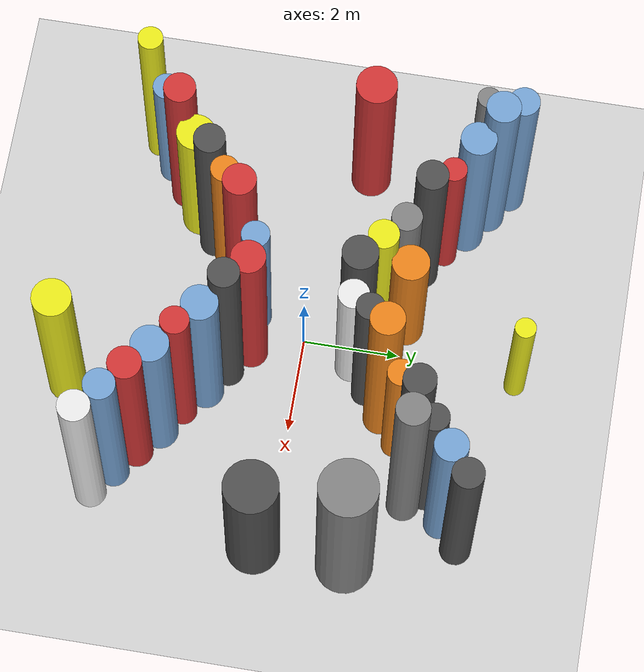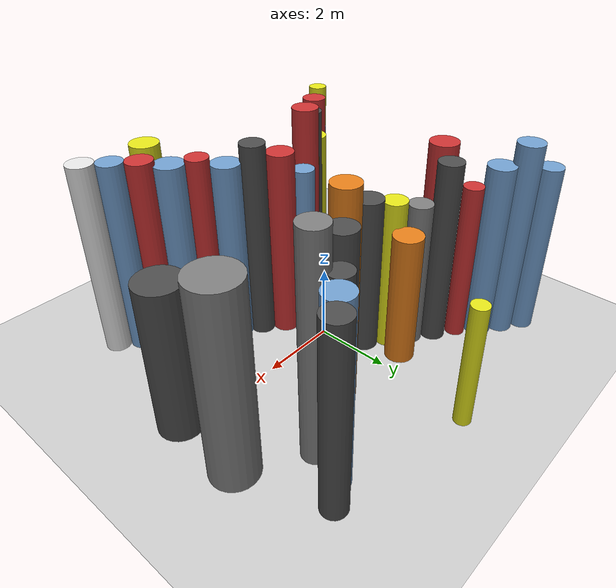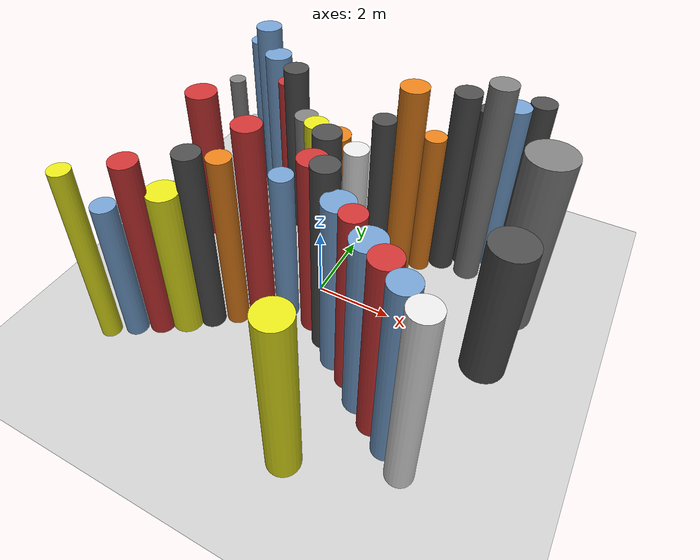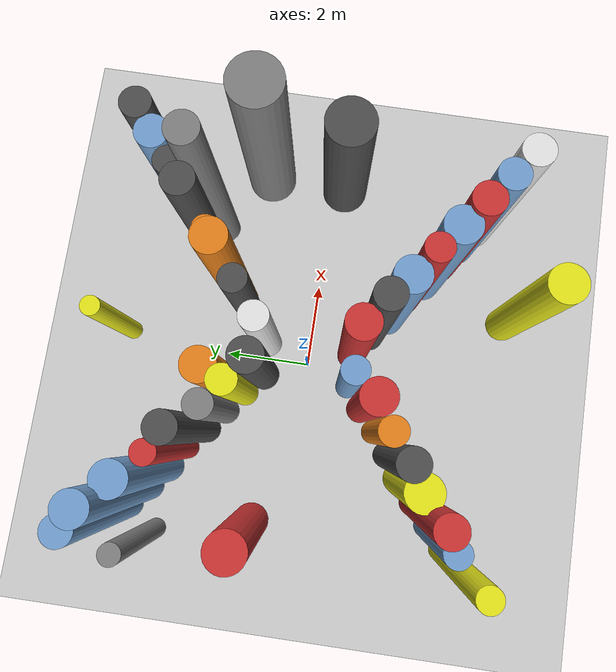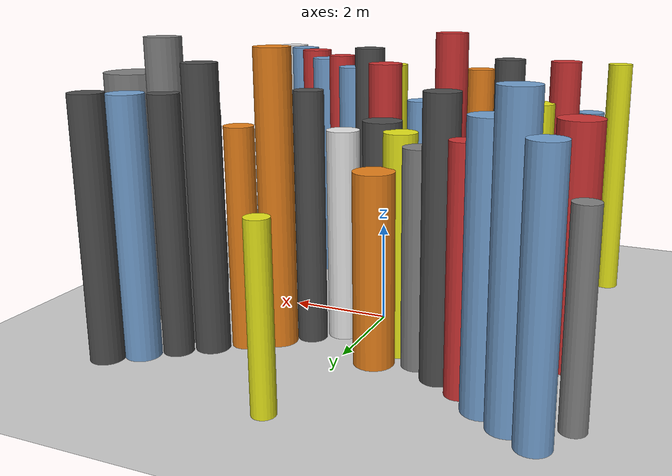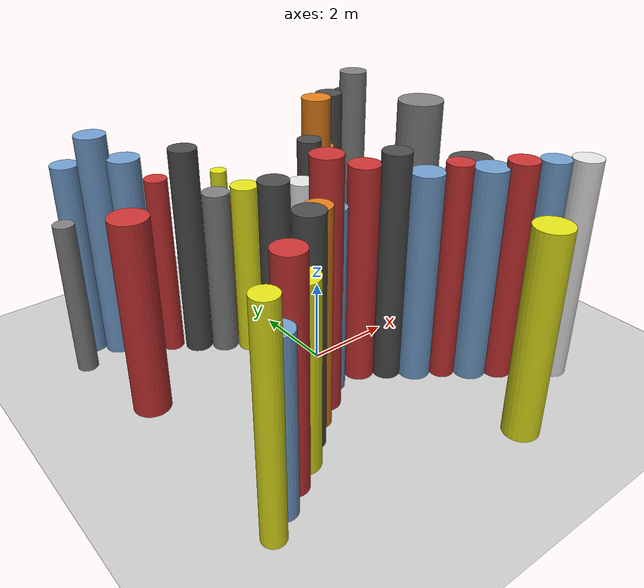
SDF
<?xml version='1.0'?>
<sdf version='1.6'>
  <world name='routeA_rl_v1__dense_recovery__rl_train__bottleneck_corridor__000016'>
    <!-- Sun light -->
    <light name='sun' type='directional'>
      <cast_shadows>1</cast_shadows>
      <pose>0 0 10 0 0 0</pose>
      <diffuse>0.8 0.8 0.8 1</diffuse>
      <specular>0.2 0.2 0.2 1</specular>
      <attenuation>
        <range>1000</range>
        <constant>0.9</constant>
        <linear>0.01</linear>
        <quadratic>0.001</quadratic>
      </attenuation>
      <direction>-0.5 0.1 -0.9</direction>
    </light>

    <!-- Ground plane -->
    <model name='ground_plane'>
      <static>1</static>
      <link name='link'>
        <collision name='collision'>
          <geometry>
            <plane>
              <normal>0 0 1</normal>
              <size>100 100</size>
            </plane>
          </geometry>
          <surface>
            <contact>
              <collide_bitmask>65535</collide_bitmask>
              <ode/>
            </contact>
            <friction>
              <ode>
                <mu>100</mu>
                <mu2>50</mu2>
              </ode>
              <torsional><ode/></torsional>
            </friction>
            <bounce/>
          </surface>
          <max_contacts>10</max_contacts>
        </collision>
        <visual name='visual'>
          <cast_shadows>0</cast_shadows>
          <geometry>
            <plane>
              <normal>0 0 1</normal>
              <size>100 100</size>
            </plane>
          </geometry>
          <material>
            <script>
              <uri>file://media/materials/scripts/gazebo.material</uri>
              <n>Gazebo/Grey</n>
            </script>
          </material>
        </visual>
      </link>
    </model>

    <!-- Environment -->
    <magnetic_field>6e-06 2.3e-05 -4.2e-05</magnetic_field>
    <atmosphere type='adiabatic'/>
    <physics name='default_physics' default='0' type='ode'>
      <gravity>0 0 -9.8</gravity>
      <max_step_size>0.004</max_step_size>
      <real_time_factor>1</real_time_factor>
      <real_time_update_rate>250</real_time_update_rate>
    </physics>
    <scene>
      <ambient>0.4 0.4 0.4 1</ambient>
      <background>0.7 0.7 0.7 1</background>
      <shadows>1</shadows>
    </scene>
    <wind/>
    <spherical_coordinates>
      <surface_model>EARTH_WGS84</surface_model>
      <latitude_deg>0</latitude_deg>
      <longitude_deg>0</longitude_deg>
      <elevation>0</elevation>
      <heading_deg>0</heading_deg>
    </spherical_coordinates>

    <!-- ============ OBSTACLES (40) ============ -->
    <model name='funnel_l_0'>
      <static>1</static>
      <link name='link'>
        <visual name='visual'>
          <geometry>
            <cylinder>
              <radius>0.2556</radius>
              <length>5.0747</length>
            </cylinder>
          </geometry>
          <material>
            <script>
              <n>Gazebo/Yellow</n>
              <uri>file://media/materials/scripts/gazebo.material</uri>
            </script>
            <ambient>0.9 0.9 0.1 1</ambient>
          </material>
        </visual>
        <collision name='collision'>
          <geometry>
            <cylinder>
              <radius>0.2556</radius>
              <length>5.0747</length>
            </cylinder>
          </geometry>
          <max_contacts>10</max_contacts>
          <surface>
            <contact><ode/></contact>
            <bounce/>
            <friction>
              <ode><mu>1</mu><mu2>1</mu2></ode>
              <torsional><ode/></torsional>
            </friction>
          </surface>
        </collision>
      </link>
      <pose>-4.0000 -3.8000 2.5373 0 0 0.0000</pose>
    </model>

    <model name='funnel_r_0'>
      <static>1</static>
      <link name='link'>
        <visual name='visual'>
          <geometry>
            <cylinder>
              <radius>0.3141</radius>
              <length>4.7385</length>
            </cylinder>
          </geometry>
          <material>
            <script>
              <n>Gazebo/Blue</n>
              <uri>file://media/materials/scripts/gazebo.material</uri>
            </script>
            <ambient>0.447 0.624 0.812 1</ambient>
          </material>
        </visual>
        <collision name='collision'>
          <geometry>
            <cylinder>
              <radius>0.3141</radius>
              <length>4.7385</length>
            </cylinder>
          </geometry>
          <max_contacts>10</max_contacts>
          <surface>
            <contact><ode/></contact>
            <bounce/>
            <friction>
              <ode><mu>1</mu><mu2>1</mu2></ode>
              <torsional><ode/></torsional>
            </friction>
          </surface>
        </collision>
      </link>
      <pose>-4.0000 3.8000 2.3692 0 0 0.0000</pose>
    </model>

    <model name='funnel_l_1'>
      <static>1</static>
      <link name='link'>
        <visual name='visual'>
          <geometry>
            <cylinder>
              <radius>0.2898</radius>
              <length>4.0480</length>
            </cylinder>
          </geometry>
          <material>
            <script>
              <n>Gazebo/Blue</n>
              <uri>file://media/materials/scripts/gazebo.material</uri>
            </script>
            <ambient>0.447 0.624 0.812 1</ambient>
          </material>
        </visual>
        <collision name='collision'>
          <geometry>
            <cylinder>
              <radius>0.2898</radius>
              <length>4.0480</length>
            </cylinder>
          </geometry>
          <max_contacts>10</max_contacts>
          <surface>
            <contact><ode/></contact>
            <bounce/>
            <friction>
              <ode><mu>1</mu><mu2>1</mu2></ode>
              <torsional><ode/></torsional>
            </friction>
          </surface>
        </collision>
      </link>
      <pose>-3.4857 -3.4071 2.0240 0 0 0.0000</pose>
    </model>

    <model name='funnel_r_1'>
      <static>1</static>
      <link name='link'>
        <visual name='visual'>
          <geometry>
            <cylinder>
              <radius>0.3482</radius>
              <length>5.4167</length>
            </cylinder>
          </geometry>
          <material>
            <script>
              <n>Gazebo/Blue</n>
              <uri>file://media/materials/scripts/gazebo.material</uri>
            </script>
            <ambient>0.447 0.624 0.812 1</ambient>
          </material>
        </visual>
        <collision name='collision'>
          <geometry>
            <cylinder>
              <radius>0.3482</radius>
              <length>5.4167</length>
            </cylinder>
          </geometry>
          <max_contacts>10</max_contacts>
          <surface>
            <contact><ode/></contact>
            <bounce/>
            <friction>
              <ode><mu>1</mu><mu2>1</mu2></ode>
              <torsional><ode/></torsional>
            </friction>
          </surface>
        </collision>
      </link>
      <pose>-3.4857 3.4071 2.7084 0 0 0.0000</pose>
    </model>

    <model name='funnel_l_2'>
      <static>1</static>
      <link name='link'>
        <visual name='visual'>
          <geometry>
            <cylinder>
              <radius>0.3272</radius>
              <length>5.1636</length>
            </cylinder>
          </geometry>
          <material>
            <script>
              <n>Gazebo/Red</n>
              <uri>file://media/materials/scripts/gazebo.material</uri>
            </script>
            <ambient>0.8 0.2 0.2 1</ambient>
          </material>
        </visual>
        <collision name='collision'>
          <geometry>
            <cylinder>
              <radius>0.3272</radius>
              <length>5.1636</length>
            </cylinder>
          </geometry>
          <max_contacts>10</max_contacts>
          <surface>
            <contact><ode/></contact>
            <bounce/>
            <friction>
              <ode><mu>1</mu><mu2>1</mu2></ode>
              <torsional><ode/></torsional>
            </friction>
          </surface>
        </collision>
      </link>
      <pose>-2.9714 -3.0143 2.5818 0 0 0.0000</pose>
    </model>

    <model name='funnel_r_2'>
      <static>1</static>
      <link name='link'>
        <visual name='visual'>
          <geometry>
            <cylinder>
              <radius>0.3634</radius>
              <length>4.8879</length>
            </cylinder>
          </geometry>
          <material>
            <script>
              <n>Gazebo/Blue</n>
              <uri>file://media/materials/scripts/gazebo.material</uri>
            </script>
            <ambient>0.447 0.624 0.812 1</ambient>
          </material>
        </visual>
        <collision name='collision'>
          <geometry>
            <cylinder>
              <radius>0.3634</radius>
              <length>4.8879</length>
            </cylinder>
          </geometry>
          <max_contacts>10</max_contacts>
          <surface>
            <contact><ode/></contact>
            <bounce/>
            <friction>
              <ode><mu>1</mu><mu2>1</mu2></ode>
              <torsional><ode/></torsional>
            </friction>
          </surface>
        </collision>
      </link>
      <pose>-2.9714 3.0143 2.4440 0 0 0.0000</pose>
    </model>

    <model name='funnel_l_3'>
      <static>1</static>
      <link name='link'>
        <visual name='visual'>
          <geometry>
            <cylinder>
              <radius>0.3950</radius>
              <length>4.2938</length>
            </cylinder>
          </geometry>
          <material>
            <script>
              <n>Gazebo/Yellow</n>
              <uri>file://media/materials/scripts/gazebo.material</uri>
            </script>
            <ambient>0.9 0.9 0.1 1</ambient>
          </material>
        </visual>
        <collision name='collision'>
          <geometry>
            <cylinder>
              <radius>0.3950</radius>
              <length>4.2938</length>
            </cylinder>
          </geometry>
          <max_contacts>10</max_contacts>
          <surface>
            <contact><ode/></contact>
            <bounce/>
            <friction>
              <ode><mu>1</mu><mu2>1</mu2></ode>
              <torsional><ode/></torsional>
            </friction>
          </surface>
        </collision>
      </link>
      <pose>-2.4571 -2.6214 2.1469 0 0 0.0000</pose>
    </model>

    <model name='funnel_r_3'>
      <static>1</static>
      <link name='link'>
        <visual name='visual'>
          <geometry>
            <cylinder>
              <radius>0.2606</radius>
              <length>4.3998</length>
            </cylinder>
          </geometry>
          <material>
            <script>
              <n>Gazebo/Red</n>
              <uri>file://media/materials/scripts/gazebo.material</uri>
            </script>
            <ambient>0.8 0.2 0.2 1</ambient>
          </material>
        </visual>
        <collision name='collision'>
          <geometry>
            <cylinder>
              <radius>0.2606</radius>
              <length>4.3998</length>
            </cylinder>
          </geometry>
          <max_contacts>10</max_contacts>
          <surface>
            <contact><ode/></contact>
            <bounce/>
            <friction>
              <ode><mu>1</mu><mu2>1</mu2></ode>
              <torsional><ode/></torsional>
            </friction>
          </surface>
        </collision>
      </link>
      <pose>-2.4571 2.6214 2.1999 0 0 0.0000</pose>
    </model>

    <model name='funnel_l_4'>
      <static>1</static>
      <link name='link'>
        <visual name='visual'>
          <geometry>
            <cylinder>
              <radius>0.3209</radius>
              <length>5.2410</length>
            </cylinder>
          </geometry>
          <material>
            <script>
              <n>Gazebo/DarkGrey</n>
              <uri>file://media/materials/scripts/gazebo.material</uri>
            </script>
            <ambient>0.3 0.3 0.3 1</ambient>
          </material>
        </visual>
        <collision name='collision'>
          <geometry>
            <cylinder>
              <radius>0.3209</radius>
              <length>5.2410</length>
            </cylinder>
          </geometry>
          <max_contacts>10</max_contacts>
          <surface>
            <contact><ode/></contact>
            <bounce/>
            <friction>
              <ode><mu>1</mu><mu2>1</mu2></ode>
              <torsional><ode/></torsional>
            </friction>
          </surface>
        </collision>
      </link>
      <pose>-1.9429 -2.2286 2.6205 0 0 0.0000</pose>
    </model>

    <model name='funnel_r_4'>
      <static>1</static>
      <link name='link'>
        <visual name='visual'>
          <geometry>
            <cylinder>
              <radius>0.3242</radius>
              <length>5.0998</length>
            </cylinder>
          </geometry>
          <material>
            <script>
              <n>Gazebo/DarkGrey</n>
              <uri>file://media/materials/scripts/gazebo.material</uri>
            </script>
            <ambient>0.3 0.3 0.3 1</ambient>
          </material>
        </visual>
        <collision name='collision'>
          <geometry>
            <cylinder>
              <radius>0.3242</radius>
              <length>5.0998</length>
            </cylinder>
          </geometry>
          <max_contacts>10</max_contacts>
          <surface>
            <contact><ode/></contact>
            <bounce/>
            <friction>
              <ode><mu>1</mu><mu2>1</mu2></ode>
              <torsional><ode/></torsional>
            </friction>
          </surface>
        </collision>
      </link>
      <pose>-1.9429 2.2286 2.5499 0 0 0.0000</pose>
    </model>

    <model name='funnel_l_5'>
      <static>1</static>
      <link name='link'>
        <visual name='visual'>
          <geometry>
            <cylinder>
              <radius>0.2881</radius>
              <length>5.0540</length>
            </cylinder>
          </geometry>
          <material>
            <script>
              <n>Gazebo/Orange</n>
              <uri>file://media/materials/scripts/gazebo.material</uri>
            </script>
            <ambient>0.9 0.5 0.1 1</ambient>
          </material>
        </visual>
        <collision name='collision'>
          <geometry>
            <cylinder>
              <radius>0.2881</radius>
              <length>5.0540</length>
            </cylinder>
          </geometry>
          <max_contacts>10</max_contacts>
          <surface>
            <contact><ode/></contact>
            <bounce/>
            <friction>
              <ode><mu>1</mu><mu2>1</mu2></ode>
              <torsional><ode/></torsional>
            </friction>
          </surface>
        </collision>
      </link>
      <pose>-1.4286 -1.8357 2.5270 0 0 0.0000</pose>
    </model>

    <model name='funnel_r_5'>
      <static>1</static>
      <link name='link'>
        <visual name='visual'>
          <geometry>
            <cylinder>
              <radius>0.3137</radius>
              <length>4.0667</length>
            </cylinder>
          </geometry>
          <material>
            <script>
              <n>Gazebo/Grey</n>
              <uri>file://media/materials/scripts/gazebo.material</uri>
            </script>
            <ambient>0.5 0.5 0.5 1</ambient>
          </material>
        </visual>
        <collision name='collision'>
          <geometry>
            <cylinder>
              <radius>0.3137</radius>
              <length>4.0667</length>
            </cylinder>
          </geometry>
          <max_contacts>10</max_contacts>
          <surface>
            <contact><ode/></contact>
            <bounce/>
            <friction>
              <ode><mu>1</mu><mu2>1</mu2></ode>
              <torsional><ode/></torsional>
            </friction>
          </surface>
        </collision>
      </link>
      <pose>-1.4286 1.8357 2.0334 0 0 0.0000</pose>
    </model>

    <model name='funnel_l_6'>
      <static>1</static>
      <link name='link'>
        <visual name='visual'>
          <geometry>
            <cylinder>
              <radius>0.3389</radius>
              <length>5.8057</length>
            </cylinder>
          </geometry>
          <material>
            <script>
              <n>Gazebo/Red</n>
              <uri>file://media/materials/scripts/gazebo.material</uri>
            </script>
            <ambient>0.8 0.2 0.2 1</ambient>
          </material>
        </visual>
        <collision name='collision'>
          <geometry>
            <cylinder>
              <radius>0.3389</radius>
              <length>5.8057</length>
            </cylinder>
          </geometry>
          <max_contacts>10</max_contacts>
          <surface>
            <contact><ode/></contact>
            <bounce/>
            <friction>
              <ode><mu>1</mu><mu2>1</mu2></ode>
              <torsional><ode/></torsional>
            </friction>
          </surface>
        </collision>
      </link>
      <pose>-0.9143 -1.4429 2.9028 0 0 0.0000</pose>
    </model>

    <model name='funnel_r_6'>
      <static>1</static>
      <link name='link'>
        <visual name='visual'>
          <geometry>
            <cylinder>
              <radius>0.3179</radius>
              <length>4.2262</length>
            </cylinder>
          </geometry>
          <material>
            <script>
              <n>Gazebo/Yellow</n>
              <uri>file://media/materials/scripts/gazebo.material</uri>
            </script>
            <ambient>0.9 0.9 0.1 1</ambient>
          </material>
        </visual>
        <collision name='collision'>
          <geometry>
            <cylinder>
              <radius>0.3179</radius>
              <length>4.2262</length>
            </cylinder>
          </geometry>
          <max_contacts>10</max_contacts>
          <surface>
            <contact><ode/></contact>
            <bounce/>
            <friction>
              <ode><mu>1</mu><mu2>1</mu2></ode>
              <torsional><ode/></torsional>
            </friction>
          </surface>
        </collision>
      </link>
      <pose>-0.9143 1.4429 2.1131 0 0 0.0000</pose>
    </model>

    <model name='funnel_l_7'>
      <static>1</static>
      <link name='link'>
        <visual name='visual'>
          <geometry>
            <cylinder>
              <radius>0.2910</radius>
              <length>4.4457</length>
            </cylinder>
          </geometry>
          <material>
            <script>
              <n>Gazebo/Blue</n>
              <uri>file://media/materials/scripts/gazebo.material</uri>
            </script>
            <ambient>0.447 0.624 0.812 1</ambient>
          </material>
        </visual>
        <collision name='collision'>
          <geometry>
            <cylinder>
              <radius>0.2910</radius>
              <length>4.4457</length>
            </cylinder>
          </geometry>
          <max_contacts>10</max_contacts>
          <surface>
            <contact><ode/></contact>
            <bounce/>
            <friction>
              <ode><mu>1</mu><mu2>1</mu2></ode>
              <torsional><ode/></torsional>
            </friction>
          </surface>
        </collision>
      </link>
      <pose>-0.4000 -1.0500 2.2229 0 0 0.0000</pose>
    </model>

    <model name='funnel_r_7'>
      <static>1</static>
      <link name='link'>
        <visual name='visual'>
          <geometry>
            <cylinder>
              <radius>0.3722</radius>
              <length>4.3404</length>
            </cylinder>
          </geometry>
          <material>
            <script>
              <n>Gazebo/DarkGrey</n>
              <uri>file://media/materials/scripts/gazebo.material</uri>
            </script>
            <ambient>0.3 0.3 0.3 1</ambient>
          </material>
        </visual>
        <collision name='collision'>
          <geometry>
            <cylinder>
              <radius>0.3722</radius>
              <length>4.3404</length>
            </cylinder>
          </geometry>
          <max_contacts>10</max_contacts>
          <surface>
            <contact><ode/></contact>
            <bounce/>
            <friction>
              <ode><mu>1</mu><mu2>1</mu2></ode>
              <torsional><ode/></torsional>
            </friction>
          </surface>
        </collision>
      </link>
      <pose>-0.4000 1.0500 2.1702 0 0 0.0000</pose>
    </model>

    <model name='funnel_out_l_0'>
      <static>1</static>
      <link name='link'>
        <visual name='visual'>
          <geometry>
            <cylinder>
              <radius>0.3514</radius>
              <length>5.1722</length>
            </cylinder>
          </geometry>
          <material>
            <script>
              <n>Gazebo/Red</n>
              <uri>file://media/materials/scripts/gazebo.material</uri>
            </script>
            <ambient>0.8 0.2 0.2 1</ambient>
          </material>
        </visual>
        <collision name='collision'>
          <geometry>
            <cylinder>
              <radius>0.3514</radius>
              <length>5.1722</length>
            </cylinder>
          </geometry>
          <max_contacts>10</max_contacts>
          <surface>
            <contact><ode/></contact>
            <bounce/>
            <friction>
              <ode><mu>1</mu><mu2>1</mu2></ode>
              <torsional><ode/></torsional>
            </friction>
          </surface>
        </collision>
      </link>
      <pose>0.4000 -1.0500 2.5861 0 0 0.0000</pose>
    </model>

    <model name='funnel_out_r_0'>
      <static>1</static>
      <link name='link'>
        <visual name='visual'>
          <geometry>
            <cylinder>
              <radius>0.3197</radius>
              <length>4.1142</length>
            </cylinder>
          </geometry>
          <material>
            <script>
              <n>Gazebo/White</n>
              <uri>file://media/materials/scripts/gazebo.material</uri>
            </script>
            <ambient>0.9 0.9 0.9 1</ambient>
          </material>
        </visual>
        <collision name='collision'>
          <geometry>
            <cylinder>
              <radius>0.3197</radius>
              <length>4.1142</length>
            </cylinder>
          </geometry>
          <max_contacts>10</max_contacts>
          <surface>
            <contact><ode/></contact>
            <bounce/>
            <friction>
              <ode><mu>1</mu><mu2>1</mu2></ode>
              <torsional><ode/></torsional>
            </friction>
          </surface>
        </collision>
      </link>
      <pose>0.4000 1.0500 2.0571 0 0 0.0000</pose>
    </model>

    <model name='funnel_out_l_1'>
      <static>1</static>
      <link name='link'>
        <visual name='visual'>
          <geometry>
            <cylinder>
              <radius>0.3209</radius>
              <length>5.4429</length>
            </cylinder>
          </geometry>
          <material>
            <script>
              <n>Gazebo/DarkGrey</n>
              <uri>file://media/materials/scripts/gazebo.material</uri>
            </script>
            <ambient>0.3 0.3 0.3 1</ambient>
          </material>
        </visual>
        <collision name='collision'>
          <geometry>
            <cylinder>
              <radius>0.3209</radius>
              <length>5.4429</length>
            </cylinder>
          </geometry>
          <max_contacts>10</max_contacts>
          <surface>
            <contact><ode/></contact>
            <bounce/>
            <friction>
              <ode><mu>1</mu><mu2>1</mu2></ode>
              <torsional><ode/></torsional>
            </friction>
          </surface>
        </collision>
      </link>
      <pose>0.9143 -1.4429 2.7215 0 0 0.0000</pose>
    </model>

    <model name='funnel_out_r_1'>
      <static>1</static>
      <link name='link'>
        <visual name='visual'>
          <geometry>
            <cylinder>
              <radius>0.2873</radius>
              <length>4.8858</length>
            </cylinder>
          </geometry>
          <material>
            <script>
              <n>Gazebo/DarkGrey</n>
              <uri>file://media/materials/scripts/gazebo.material</uri>
            </script>
            <ambient>0.3 0.3 0.3 1</ambient>
          </material>
        </visual>
        <collision name='collision'>
          <geometry>
            <cylinder>
              <radius>0.2873</radius>
              <length>4.8858</length>
            </cylinder>
          </geometry>
          <max_contacts>10</max_contacts>
          <surface>
            <contact><ode/></contact>
            <bounce/>
            <friction>
              <ode><mu>1</mu><mu2>1</mu2></ode>
              <torsional><ode/></torsional>
            </friction>
          </surface>
        </collision>
      </link>
      <pose>0.9143 1.4429 2.4429 0 0 0.0000</pose>
    </model>

    <model name='funnel_out_l_2'>
      <static>1</static>
      <link name='link'>
        <visual name='visual'>
          <geometry>
            <cylinder>
              <radius>0.3749</radius>
              <length>4.9918</length>
            </cylinder>
          </geometry>
          <material>
            <script>
              <n>Gazebo/Blue</n>
              <uri>file://media/materials/scripts/gazebo.material</uri>
            </script>
            <ambient>0.447 0.624 0.812 1</ambient>
          </material>
        </visual>
        <collision name='collision'>
          <geometry>
            <cylinder>
              <radius>0.3749</radius>
              <length>4.9918</length>
            </cylinder>
          </geometry>
          <max_contacts>10</max_contacts>
          <surface>
            <contact><ode/></contact>
            <bounce/>
            <friction>
              <ode><mu>1</mu><mu2>1</mu2></ode>
              <torsional><ode/></torsional>
            </friction>
          </surface>
        </collision>
      </link>
      <pose>1.4286 -1.8357 2.4959 0 0 0.0000</pose>
    </model>

    <model name='funnel_out_r_2'>
      <static>1</static>
      <link name='link'>
        <visual name='visual'>
          <geometry>
            <cylinder>
              <radius>0.3491</radius>
              <length>5.6908</length>
            </cylinder>
          </geometry>
          <material>
            <script>
              <n>Gazebo/Orange</n>
              <uri>file://media/materials/scripts/gazebo.material</uri>
            </script>
            <ambient>0.9 0.5 0.1 1</ambient>
          </material>
        </visual>
        <collision name='collision'>
          <geometry>
            <cylinder>
              <radius>0.3491</radius>
              <length>5.6908</length>
            </cylinder>
          </geometry>
          <max_contacts>10</max_contacts>
          <surface>
            <contact><ode/></contact>
            <bounce/>
            <friction>
              <ode><mu>1</mu><mu2>1</mu2></ode>
              <torsional><ode/></torsional>
            </friction>
          </surface>
        </collision>
      </link>
      <pose>1.4286 1.8357 2.8454 0 0 0.0000</pose>
    </model>

    <model name='funnel_out_l_3'>
      <static>1</static>
      <link name='link'>
        <visual name='visual'>
          <geometry>
            <cylinder>
              <radius>0.2941</radius>
              <length>5.1925</length>
            </cylinder>
          </geometry>
          <material>
            <script>
              <n>Gazebo/Red</n>
              <uri>file://media/materials/scripts/gazebo.material</uri>
            </script>
            <ambient>0.8 0.2 0.2 1</ambient>
          </material>
        </visual>
        <collision name='collision'>
          <geometry>
            <cylinder>
              <radius>0.2941</radius>
              <length>5.1925</length>
            </cylinder>
          </geometry>
          <max_contacts>10</max_contacts>
          <surface>
            <contact><ode/></contact>
            <bounce/>
            <friction>
              <ode><mu>1</mu><mu2>1</mu2></ode>
              <torsional><ode/></torsional>
            </friction>
          </surface>
        </collision>
      </link>
      <pose>1.9429 -2.2286 2.5963 0 0 0.0000</pose>
    </model>

    <model name='funnel_out_r_3'>
      <static>1</static>
      <link name='link'>
        <visual name='visual'>
          <geometry>
            <cylinder>
              <radius>0.2830</radius>
              <length>4.2779</length>
            </cylinder>
          </geometry>
          <material>
            <script>
              <n>Gazebo/Orange</n>
              <uri>file://media/materials/scripts/gazebo.material</uri>
            </script>
            <ambient>0.9 0.5 0.1 1</ambient>
          </material>
        </visual>
        <collision name='collision'>
          <geometry>
            <cylinder>
              <radius>0.2830</radius>
              <length>4.2779</length>
            </cylinder>
          </geometry>
          <max_contacts>10</max_contacts>
          <surface>
            <contact><ode/></contact>
            <bounce/>
            <friction>
              <ode><mu>1</mu><mu2>1</mu2></ode>
              <torsional><ode/></torsional>
            </friction>
          </surface>
        </collision>
      </link>
      <pose>1.9429 2.2286 2.1390 0 0 0.0000</pose>
    </model>

    <model name='funnel_out_l_4'>
      <static>1</static>
      <link name='link'>
        <visual name='visual'>
          <geometry>
            <cylinder>
              <radius>0.3834</radius>
              <length>5.0883</length>
            </cylinder>
          </geometry>
          <material>
            <script>
              <n>Gazebo/Blue</n>
              <uri>file://media/materials/scripts/gazebo.material</uri>
            </script>
            <ambient>0.447 0.624 0.812 1</ambient>
          </material>
        </visual>
        <collision name='collision'>
          <geometry>
            <cylinder>
              <radius>0.3834</radius>
              <length>5.0883</length>
            </cylinder>
          </geometry>
          <max_contacts>10</max_contacts>
          <surface>
            <contact><ode/></contact>
            <bounce/>
            <friction>
              <ode><mu>1</mu><mu2>1</mu2></ode>
              <torsional><ode/></torsional>
            </friction>
          </surface>
        </collision>
      </link>
      <pose>2.4571 -2.6214 2.5441 0 0 0.0000</pose>
    </model>

    <model name='funnel_out_r_4'>
      <static>1</static>
      <link name='link'>
        <visual name='visual'>
          <geometry>
            <cylinder>
              <radius>0.3327</radius>
              <length>5.4341</length>
            </cylinder>
          </geometry>
          <material>
            <script>
              <n>Gazebo/DarkGrey</n>
              <uri>file://media/materials/scripts/gazebo.material</uri>
            </script>
            <ambient>0.3 0.3 0.3 1</ambient>
          </material>
        </visual>
        <collision name='collision'>
          <geometry>
            <cylinder>
              <radius>0.3327</radius>
              <length>5.4341</length>
            </cylinder>
          </geometry>
          <max_contacts>10</max_contacts>
          <surface>
            <contact><ode/></contact>
            <bounce/>
            <friction>
              <ode><mu>1</mu><mu2>1</mu2></ode>
              <torsional><ode/></torsional>
            </friction>
          </surface>
        </collision>
      </link>
      <pose>2.4571 2.6214 2.7170 0 0 0.0000</pose>
    </model>

    <model name='funnel_out_l_5'>
      <static>1</static>
      <link name='link'>
        <visual name='visual'>
          <geometry>
            <cylinder>
              <radius>0.3405</radius>
              <length>5.2278</length>
            </cylinder>
          </geometry>
          <material>
            <script>
              <n>Gazebo/Red</n>
              <uri>file://media/materials/scripts/gazebo.material</uri>
            </script>
            <ambient>0.8 0.2 0.2 1</ambient>
          </material>
        </visual>
        <collision name='collision'>
          <geometry>
            <cylinder>
              <radius>0.3405</radius>
              <length>5.2278</length>
            </cylinder>
          </geometry>
          <max_contacts>10</max_contacts>
          <surface>
            <contact><ode/></contact>
            <bounce/>
            <friction>
              <ode><mu>1</mu><mu2>1</mu2></ode>
              <torsional><ode/></torsional>
            </friction>
          </surface>
        </collision>
      </link>
      <pose>2.9714 -3.0143 2.6139 0 0 0.0000</pose>
    </model>

    <model name='funnel_out_r_5'>
      <static>1</static>
      <link name='link'>
        <visual name='visual'>
          <geometry>
            <cylinder>
              <radius>0.2903</radius>
              <length>4.9147</length>
            </cylinder>
          </geometry>
          <material>
            <script>
              <n>Gazebo/DarkGrey</n>
              <uri>file://media/materials/scripts/gazebo.material</uri>
            </script>
            <ambient>0.3 0.3 0.3 1</ambient>
          </material>
        </visual>
        <collision name='collision'>
          <geometry>
            <cylinder>
              <radius>0.2903</radius>
              <length>4.9147</length>
            </cylinder>
          </geometry>
          <max_contacts>10</max_contacts>
          <surface>
            <contact><ode/></contact>
            <bounce/>
            <friction>
              <ode><mu>1</mu><mu2>1</mu2></ode>
              <torsional><ode/></torsional>
            </friction>
          </surface>
        </collision>
      </link>
      <pose>2.9714 3.0143 2.4574 0 0 0.0000</pose>
    </model>

    <model name='funnel_out_l_6'>
      <static>1</static>
      <link name='link'>
        <visual name='visual'>
          <geometry>
            <cylinder>
              <radius>0.3245</radius>
              <length>5.2447</length>
            </cylinder>
          </geometry>
          <material>
            <script>
              <n>Gazebo/Blue</n>
              <uri>file://media/materials/scripts/gazebo.material</uri>
            </script>
            <ambient>0.447 0.624 0.812 1</ambient>
          </material>
        </visual>
        <collision name='collision'>
          <geometry>
            <cylinder>
              <radius>0.3245</radius>
              <length>5.2447</length>
            </cylinder>
          </geometry>
          <max_contacts>10</max_contacts>
          <surface>
            <contact><ode/></contact>
            <bounce/>
            <friction>
              <ode><mu>1</mu><mu2>1</mu2></ode>
              <torsional><ode/></torsional>
            </friction>
          </surface>
        </collision>
      </link>
      <pose>3.4857 -3.4071 2.6224 0 0 0.0000</pose>
    </model>

    <model name='funnel_out_r_6'>
      <static>1</static>
      <link name='link'>
        <visual name='visual'>
          <geometry>
            <cylinder>
              <radius>0.3430</radius>
              <length>4.9350</length>
            </cylinder>
          </geometry>
          <material>
            <script>
              <n>Gazebo/Blue</n>
              <uri>file://media/materials/scripts/gazebo.material</uri>
            </script>
            <ambient>0.447 0.624 0.812 1</ambient>
          </material>
        </visual>
        <collision name='collision'>
          <geometry>
            <cylinder>
              <radius>0.3430</radius>
              <length>4.9350</length>
            </cylinder>
          </geometry>
          <max_contacts>10</max_contacts>
          <surface>
            <contact><ode/></contact>
            <bounce/>
            <friction>
              <ode><mu>1</mu><mu2>1</mu2></ode>
              <torsional><ode/></torsional>
            </friction>
          </surface>
        </collision>
      </link>
      <pose>3.4857 3.4071 2.4675 0 0 0.0000</pose>
    </model>

    <model name='funnel_out_l_7'>
      <static>1</static>
      <link name='link'>
        <visual name='visual'>
          <geometry>
            <cylinder>
              <radius>0.3297</radius>
              <length>5.2639</length>
            </cylinder>
          </geometry>
          <material>
            <script>
              <n>Gazebo/White</n>
              <uri>file://media/materials/scripts/gazebo.material</uri>
            </script>
            <ambient>0.9 0.9 0.9 1</ambient>
          </material>
        </visual>
        <collision name='collision'>
          <geometry>
            <cylinder>
              <radius>0.3297</radius>
              <length>5.2639</length>
            </cylinder>
          </geometry>
          <max_contacts>10</max_contacts>
          <surface>
            <contact><ode/></contact>
            <bounce/>
            <friction>
              <ode><mu>1</mu><mu2>1</mu2></ode>
              <torsional><ode/></torsional>
            </friction>
          </surface>
        </collision>
      </link>
      <pose>4.0000 -3.8000 2.6319 0 0 0.0000</pose>
    </model>

    <model name='funnel_out_r_7'>
      <static>1</static>
      <link name='link'>
        <visual name='visual'>
          <geometry>
            <cylinder>
              <radius>0.3220</radius>
              <length>4.9665</length>
            </cylinder>
          </geometry>
          <material>
            <script>
              <n>Gazebo/DarkGrey</n>
              <uri>file://media/materials/scripts/gazebo.material</uri>
            </script>
            <ambient>0.3 0.3 0.3 1</ambient>
          </material>
        </visual>
        <collision name='collision'>
          <geometry>
            <cylinder>
              <radius>0.3220</radius>
              <length>4.9665</length>
            </cylinder>
          </geometry>
          <max_contacts>10</max_contacts>
          <surface>
            <contact><ode/></contact>
            <bounce/>
            <friction>
              <ode><mu>1</mu><mu2>1</mu2></ode>
              <torsional><ode/></torsional>
            </friction>
          </surface>
        </collision>
      </link>
      <pose>4.0000 3.8000 2.4833 0 0 0.0000</pose>
    </model>

    <model name='bn_scatter_0'>
      <static>1</static>
      <link name='link'>
        <visual name='visual'>
          <geometry>
            <cylinder>
              <radius>0.5587</radius>
              <length>4.0371</length>
            </cylinder>
          </geometry>
          <material>
            <script>
              <n>Gazebo/DarkGrey</n>
              <uri>file://media/materials/scripts/gazebo.material</uri>
            </script>
            <ambient>0.3 0.3 0.3 1</ambient>
          </material>
        </visual>
        <collision name='collision'>
          <geometry>
            <cylinder>
              <radius>0.5587</radius>
              <length>4.0371</length>
            </cylinder>
          </geometry>
          <max_contacts>10</max_contacts>
          <surface>
            <contact><ode/></contact>
            <bounce/>
            <friction>
              <ode><mu>1</mu><mu2>1</mu2></ode>
              <torsional><ode/></torsional>
            </friction>
          </surface>
        </collision>
      </link>
      <pose>4.6478 -0.2856 2.0186 0 0 0.0000</pose>
    </model>

    <model name='bn_scatter_1'>
      <static>1</static>
      <link name='link'>
        <visual name='visual'>
          <geometry>
            <cylinder>
              <radius>0.2182</radius>
              <length>3.3375</length>
            </cylinder>
          </geometry>
          <material>
            <script>
              <n>Gazebo/Yellow</n>
              <uri>file://media/materials/scripts/gazebo.material</uri>
            </script>
            <ambient>0.9 0.9 0.1 1</ambient>
          </material>
        </visual>
        <collision name='collision'>
          <geometry>
            <cylinder>
              <radius>0.2182</radius>
              <length>3.3375</length>
            </cylinder>
          </geometry>
          <max_contacts>10</max_contacts>
          <surface>
            <contact><ode/></contact>
            <bounce/>
            <friction>
              <ode><mu>1</mu><mu2>1</mu2></ode>
              <torsional><ode/></torsional>
            </friction>
          </surface>
        </collision>
      </link>
      <pose>0.2491 4.5031 1.6687 0 0 0.0000</pose>
    </model>

    <model name='bn_scatter_2'>
      <static>1</static>
      <link name='link'>
        <visual name='visual'>
          <geometry>
            <cylinder>
              <radius>0.4015</radius>
              <length>4.7819</length>
            </cylinder>
          </geometry>
          <material>
            <script>
              <n>Gazebo/Yellow</n>
              <uri>file://media/materials/scripts/gazebo.material</uri>
            </script>
            <ambient>0.9 0.9 0.1 1</ambient>
          </material>
        </visual>
        <collision name='collision'>
          <geometry>
            <cylinder>
              <radius>0.4015</radius>
              <length>4.7819</length>
            </cylinder>
          </geometry>
          <max_contacts>10</max_contacts>
          <surface>
            <contact><ode/></contact>
            <bounce/>
            <friction>
              <ode><mu>1</mu><mu2>1</mu2></ode>
              <torsional><ode/></torsional>
            </friction>
          </surface>
        </collision>
      </link>
      <pose>1.7161 -4.7168 2.3910 0 0 0.0000</pose>
    </model>

    <model name='bn_scatter_3'>
      <static>1</static>
      <link name='link'>
        <visual name='visual'>
          <geometry>
            <cylinder>
              <radius>0.4206</radius>
              <length>4.5751</length>
            </cylinder>
          </geometry>
          <material>
            <script>
              <n>Gazebo/Red</n>
              <uri>file://media/materials/scripts/gazebo.material</uri>
            </script>
            <ambient>0.8 0.2 0.2 1</ambient>
          </material>
        </visual>
        <collision name='collision'>
          <geometry>
            <cylinder>
              <radius>0.4206</radius>
              <length>4.5751</length>
            </cylinder>
          </geometry>
          <max_contacts>10</max_contacts>
          <surface>
            <contact><ode/></contact>
            <bounce/>
            <friction>
              <ode><mu>1</mu><mu2>1</mu2></ode>
              <torsional><ode/></torsional>
            </friction>
          </surface>
        </collision>
      </link>
      <pose>-3.9660 0.8192 2.2875 0 0 0.0000</pose>
    </model>

    <model name='bn_scatter_4'>
      <static>1</static>
      <link name='link'>
        <visual name='visual'>
          <geometry>
            <cylinder>
              <radius>0.3864</radius>
              <length>3.6158</length>
            </cylinder>
          </geometry>
          <material>
            <script>
              <n>Gazebo/Orange</n>
              <uri>file://media/materials/scripts/gazebo.material</uri>
            </script>
            <ambient>0.9 0.5 0.1 1</ambient>
          </material>
        </visual>
        <collision name='collision'>
          <geometry>
            <cylinder>
              <radius>0.3864</radius>
              <length>3.6158</length>
            </cylinder>
          </geometry>
          <max_contacts>10</max_contacts>
          <surface>
            <contact><ode/></contact>
            <bounce/>
            <friction>
              <ode><mu>1</mu><mu2>1</mu2></ode>
              <torsional><ode/></torsional>
            </friction>
          </surface>
        </collision>
      </link>
      <pose>-0.6506 2.0512 1.8079 0 0 0.0000</pose>
    </model>

    <model name='bn_scatter_5'>
      <static>1</static>
      <link name='link'>
        <visual name='visual'>
          <geometry>
            <cylinder>
              <radius>0.5938</radius>
              <length>5.0796</length>
            </cylinder>
          </geometry>
          <material>
            <script>
              <n>Gazebo/Grey</n>
              <uri>file://media/materials/scripts/gazebo.material</uri>
            </script>
            <ambient>0.5 0.5 0.5 1</ambient>
          </material>
        </visual>
        <collision name='collision'>
          <geometry>
            <cylinder>
              <radius>0.5938</radius>
              <length>5.0796</length>
            </cylinder>
          </geometry>
          <max_contacts>10</max_contacts>
          <surface>
            <contact><ode/></contact>
            <bounce/>
            <friction>
              <ode><mu>1</mu><mu2>1</mu2></ode>
              <torsional><ode/></torsional>
            </friction>
          </surface>
        </collision>
      </link>
      <pose>4.7052 1.6084 2.5398 0 0 0.0000</pose>
    </model>

    <model name='bn_scatter_6'>
      <static>1</static>
      <link name='link'>
        <visual name='visual'>
          <geometry>
            <cylinder>
              <radius>0.3403</radius>
              <length>5.8640</length>
            </cylinder>
          </geometry>
          <material>
            <script>
              <n>Gazebo/Grey</n>
              <uri>file://media/materials/scripts/gazebo.material</uri>
            </script>
            <ambient>0.5 0.5 0.5 1</ambient>
          </material>
        </visual>
        <collision name='collision'>
          <geometry>
            <cylinder>
              <radius>0.3403</radius>
              <length>5.8640</length>
            </cylinder>
          </geometry>
          <max_contacts>10</max_contacts>
          <surface>
            <contact><ode/></contact>
            <bounce/>
            <friction>
              <ode><mu>1</mu><mu2>1</mu2></ode>
              <torsional><ode/></torsional>
            </friction>
          </surface>
        </collision>
      </link>
      <pose>3.2245 2.5926 2.9320 0 0 0.0000</pose>
    </model>

    <model name='bn_scatter_7'>
      <static>1</static>
      <link name='link'>
        <visual name='visual'>
          <geometry>
            <cylinder>
              <radius>0.2353</radius>
              <length>3.7139</length>
            </cylinder>
          </geometry>
          <material>
            <script>
              <n>Gazebo/Grey</n>
              <uri>file://media/materials/scripts/gazebo.material</uri>
            </script>
            <ambient>0.5 0.5 0.5 1</ambient>
          </material>
        </visual>
        <collision name='collision'>
          <geometry>
            <cylinder>
              <radius>0.2353</radius>
              <length>3.7139</length>
            </cylinder>
          </geometry>
          <max_contacts>10</max_contacts>
          <surface>
            <contact><ode/></contact>
            <bounce/>
            <friction>
              <ode><mu>1</mu><mu2>1</mu2></ode>
              <torsional><ode/></torsional>
            </friction>
          </surface>
        </collision>
      </link>
      <pose>-4.4754 3.0811 1.8569 0 0 0.0000</pose>
    </model>

    <!-- GUI camera -->
    <gui fullscreen='0'>
      <camera name='user_camera'>
        <pose>-15 0 18 0 0.85 0.15</pose>
        <view_controller>orbit</view_controller>
        <projection_type>perspective</projection_type>
      </camera>
    </gui>
  </world>
</sdf>
